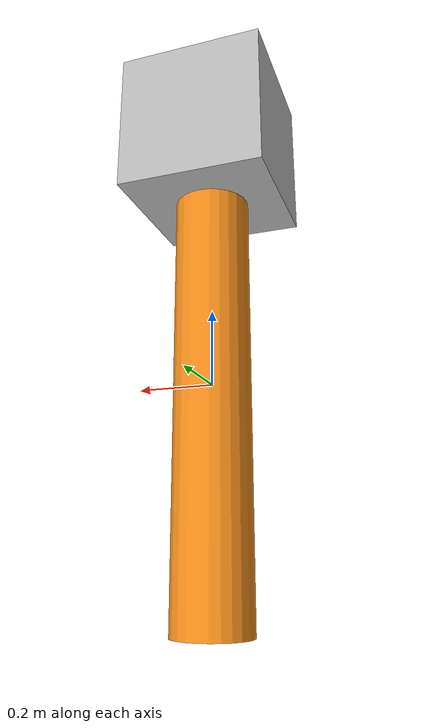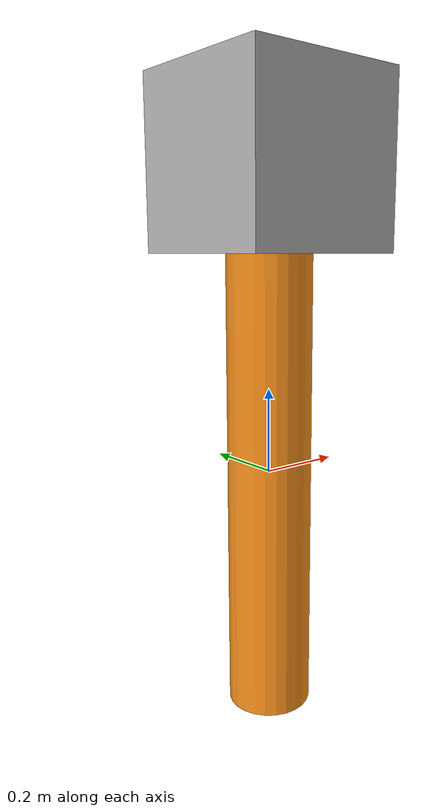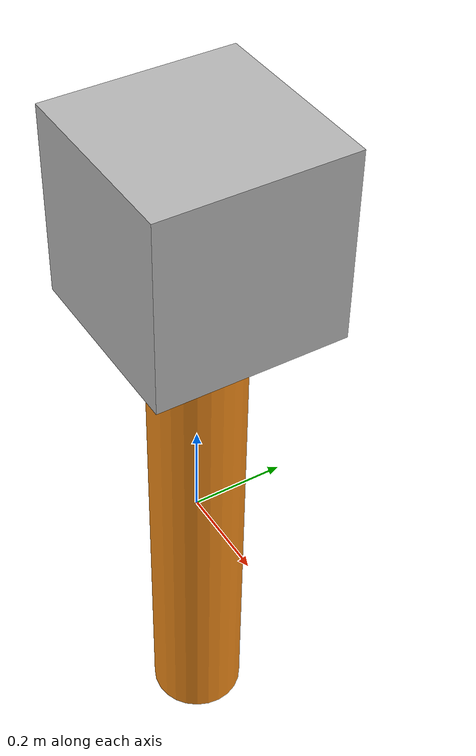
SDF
<?xml version='1.0'?>
<sdf version='1.5'>
  <model name='aruco_pole1'>
    <link name='link'>
      <pose>0 0 0 0 -0 0</pose>
      <inertial>
        <mass>1</mass>
        <inertia>
          <ixx>0.145833</ixx>
          <ixy>0</ixy>
          <ixz>0</ixz>
          <iyy>0.145833</iyy>
          <iyz>0</iyz>
          <izz>0.125</izz>
        </inertia>
        <pose>0 0 0 0 -0 0</pose>
      </inertial>
      <self_collide>0</self_collide>
      <kinematic>0</kinematic>
      <gravity>1</gravity>
      <visual name='visual'>
        <geometry>
          <cylinder>
            <radius>0.1</radius>
            <length>1.1735</length>
          </cylinder>
        </geometry>
        <material>
          <script>
            <name>Gazebo/Orange</name>
            <uri>file://media/materials/scripts/gazebo.material</uri>
          </script>
          <shader type='pixel'>
            <normal_map>__default__</normal_map>
          </shader>
          <ambient>0.3 0.3 0.3 1</ambient>
          <diffuse>0.7 0.7 0.7 1</diffuse>
          <specular>0.01 0.01 0.01 1</specular>
          <emissive>0 0.3 0.3 1</emissive>
        </material>
        <pose>0 0 0 0 -0 0</pose>
        <cast_shadows>1</cast_shadows>
        <transparency>0</transparency>
      </visual>
      <collision name='collision'>
        <laser_retro>0</laser_retro>
        <max_contacts>10</max_contacts>
        <pose>0 0 0 0 -0 0</pose>
        <geometry>
          <cylinder>
            <radius>0.1</radius>
            <length>1.1735</length>
          </cylinder>
        </geometry>
        <surface>
          <friction>
            <ode>
              <mu>1</mu>
              <mu2>1</mu2>
              <fdir1>0 0 0</fdir1>
              <slip1>0</slip1>
              <slip2>0</slip2>
            </ode>
          </friction>
          <bounce>
            <restitution_coefficient>0</restitution_coefficient>
            <threshold>1e+06</threshold>
          </bounce>
          <contact>
            <collide_without_contact>0</collide_without_contact>
            <collide_without_contact_bitmask>1</collide_without_contact_bitmask>
            <collide_bitmask>1</collide_bitmask>
            <ode>
              <soft_cfm>0</soft_cfm>
              <soft_erp>0.2</soft_erp>
              <kp>1e+13</kp>
              <kd>1</kd>
              <max_vel>0.01</max_vel>
              <min_depth>0</min_depth>
            </ode>
            <bullet>
              <split_impulse>1</split_impulse>
              <split_impulse_penetration_threshold>-0.01</split_impulse_penetration_threshold>
              <soft_cfm>0</soft_cfm>
              <soft_erp>0.2</soft_erp>
              <kp>1e+13</kp>
              <kd>1</kd>
            </bullet>
          </contact>
        </surface>
      </collision>
    </link>
    <link name='link_1'>
      <pose>0 0 0.71103 0 -0 0</pose>
      <gravity>1</gravity>
      <self_collide>0</self_collide>
      <kinematic>0</kinematic>
      <inertial>
        <mass>1</mass>
        <pose>0 0 0 0 -0 0</pose>
        <inertia>
          <ixx>1</ixx>
          <ixy>0</ixy>
          <ixz>0</ixz>
          <iyy>1</iyy>
          <iyz>0</iyz>
          <izz>1</izz>
        </inertia>
      </inertial>
      <visual name='visual'>
        <pose>0 0 0 0 -0 0</pose>
        <geometry>
          <mesh>
            <uri>model://aruco_pole/meshes/aruco.dae</uri>
            <scale>1 1 1</scale>
          </mesh>
        </geometry>
	<material>
          <shader type='pixel'>
            <normal_map>__default__</normal_map>
          </shader>
          <emissive>1 1 1 0</emissive>
        </material>
        <cast_shadows>1</cast_shadows>
        <transparency>0</transparency>
      </visual>
      <collision name='collision'>
        <laser_retro>0</laser_retro>
        <max_contacts>10</max_contacts>
        <pose>0 0 0 0 -0 0</pose>
        <geometry>
          <box>
            <size>0.395 0.395 0.395</size>
          </box>
        </geometry>
        <surface>
          <friction>
            <ode>
              <mu>1</mu>
              <mu2>1</mu2>
              <fdir1>0 0 0</fdir1>
              <slip1>0</slip1>
              <slip2>0</slip2>
            </ode>
          </friction>
          <bounce>
            <restitution_coefficient>0</restitution_coefficient>
            <threshold>1e+06</threshold>
          </bounce>
          <contact>
            <collide_without_contact>0</collide_without_contact>
            <collide_without_contact_bitmask>1</collide_without_contact_bitmask>
            <collide_bitmask>1</collide_bitmask>
            <ode>
              <soft_cfm>0</soft_cfm>
              <soft_erp>0.2</soft_erp>
              <kp>1e+13</kp>
              <kd>1</kd>
              <max_vel>0.01</max_vel>
              <min_depth>0</min_depth>
            </ode>
            <bullet>
              <split_impulse>1</split_impulse>
              <split_impulse_penetration_threshold>-0.01</split_impulse_penetration_threshold>
              <soft_cfm>0</soft_cfm>
              <soft_erp>0.2</soft_erp>
              <kp>1e+13</kp>
              <kd>1</kd>
            </bullet>
          </contact>
        </surface>
      </collision>
    </link>
    <static>1</static>
    <allow_auto_disable>1</allow_auto_disable>
  </model>
</sdf>
